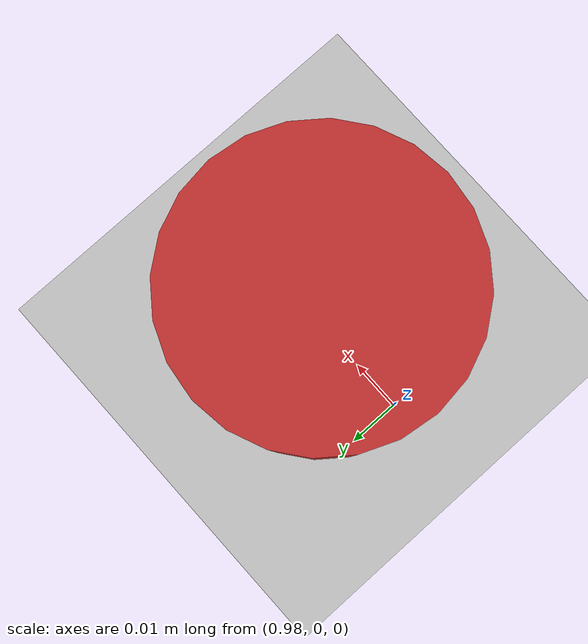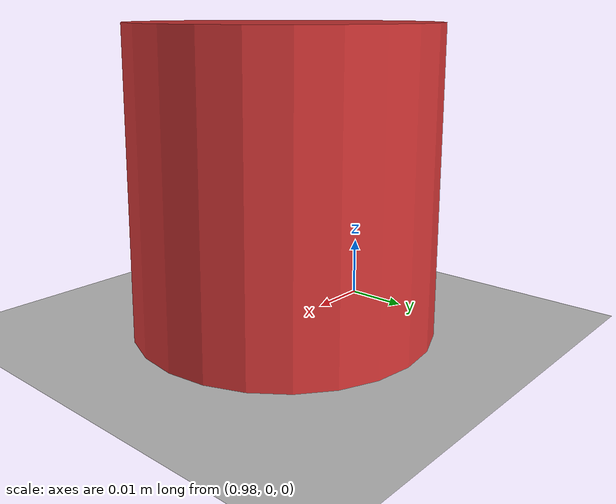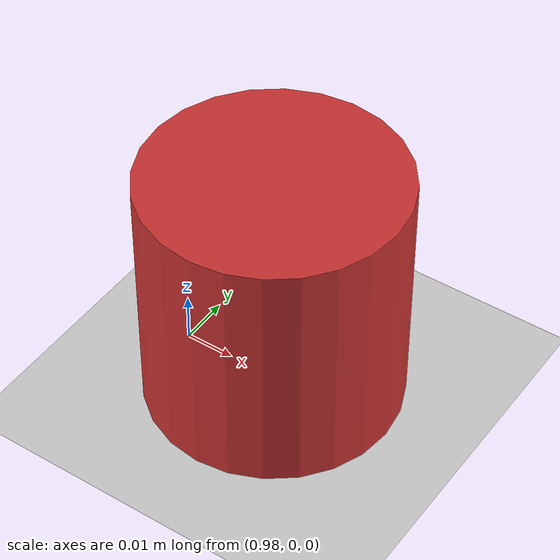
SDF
<?xml version="1.0" ?>
<sdf version="1.6">
  <world name="orion">
    <physics name="1ms" type="ode">
      <max_step_size>0.001</max_step_size>
      <real_time_factor>1.0</real_time_factor>
      <ode>
        <solver>
          <type>quick</type>
          <iters>50</iters>
          <sor>1.3</sor>
        </solver>
        <constraints>
          <cfm>0.0</cfm>
          <erp>0.2</erp>
          <contact_max_correcting_vel>100</contact_max_correcting_vel>
          <contact_surface_layer>0.001</contact_surface_layer>
        </constraints>
      </ode>
    </physics>

    <plugin filename="gz-sim-physics-system"
            name="gz::sim::systems::Physics"/>

    <plugin filename="gz-sim-user-commands-system"
            name="gz::sim::systems::UserCommands"/>
    <plugin filename="gz-sim-scene-broadcaster-system"
            name="gz::sim::systems::SceneBroadcaster"/>
    <plugin filename="gz-sim-contact-system"
            name="gz::sim::systems::Contact"/>

    <light type="directional" name="sun">
      <cast_shadows>true</cast_shadows>
      <pose>0 0 10 0 0 0</pose>
      <diffuse>0.8 0.8 0.8 1</diffuse>
      <specular>0.2 0.2 0.2 1</specular>
      <attenuation>
        <range>1000</range>
        <constant>0.9</constant>
        <linear>0.01</linear>
        <quadratic>0.001</quadratic>
      </attenuation>
      <direction>-0.5 0.1 -0.9</direction>
    </light>

    <model name="ground_plane">
      <static>true</static>
      <link name="link">
        <collision name="collision">
          <geometry>
            <plane>
              <normal>0 0 1</normal>
              <size>100 100</size>
            </plane>
          </geometry>
        </collision>
        <visual name="visual">
          <geometry>
            <plane>
              <normal>0 0 1</normal>
              <size>100 100</size>
            </plane>
          </geometry>
          <material>
            <ambient>0.8 0.8 0.8 1</ambient>
            <diffuse>0.8 0.8 0.8 1</diffuse>
            <specular>0.8 0.8 0.8 1</specular>
          </material>
        </visual>
      </link>
    </model>

    <model name="pickup_object">
      <pose>1.0 0.0 0.025 0 0 0</pose>
      <link name="link">
        <inertial>
          <mass>0.1</mass>
          <inertia>
            <ixx>0.000052</ixx>
            <iyy>0.000052</iyy>
            <izz>0.000078</izz>
            <ixy>0</ixy><ixz>0</ixz><iyz>0</iyz>
          </inertia>
        </inertial>
        <collision name="collision">
          <geometry>
            <cylinder>
              <radius>0.025</radius>
              <length>0.050</length>
            </cylinder>
          </geometry>
          <surface>
            <friction>
              <ode><mu>0.8</mu><mu2>0.8</mu2></ode>
            </friction>
          </surface>
        </collision>
        <visual name="visual">
          <geometry>
            <cylinder>
              <radius>0.025</radius>
              <length>0.050</length>
            </cylinder>
          </geometry>
          <material>
            <ambient>0.8 0.2 0.2 1</ambient>
            <diffuse>0.8 0.2 0.2 1</diffuse>
            <specular>0.1 0.1 0.1 1</specular>
          </material>
        </visual>
      </link>

      <plugin filename="gz-sim-pose-publisher-system"
              name="gz::sim::systems::PosePublisher">
        <publish_link_pose>false</publish_link_pose>
        <publish_sensor_pose>false</publish_sensor_pose>
        <publish_collision_pose>false</publish_collision_pose>
        <publish_visual_pose>false</publish_visual_pose>
        <publish_nested_model_pose>false</publish_nested_model_pose>
        <use_pose_vector_msg>true</use_pose_vector_msg>
        <update_frequency>10</update_frequency>
      </plugin>
    </model>

  </world>
</sdf>
